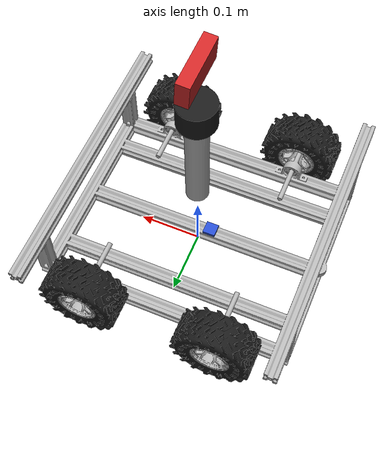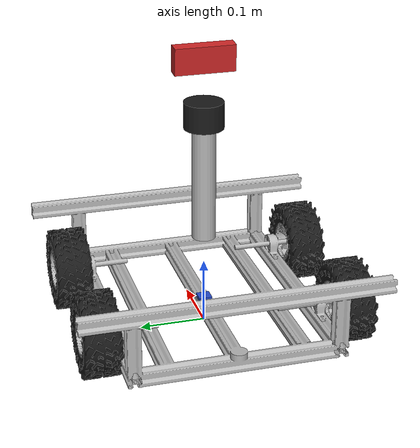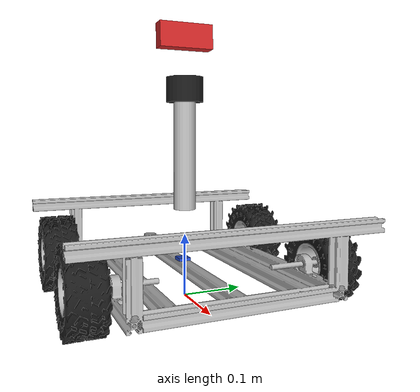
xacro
<?xml version="1.0" ?>
<robot name="perceptron_robot" xmlns:xacro="http://www.ros.org/wiki/xacro">

  <xacro:include filename="$(find perceptron_robot_description)/urdf/materials.xacro" />

  <xacro:arg name="is_sim" default="true"/>
  <xacro:arg name="gazebo_controllers" default="$(find perceptron_robot_control)/config/controllers.yaml"/>
  <!-- true swaps the ~340k-triangle meshes for primitives (much faster on WSL software GL) -->
  <xacro:arg name="simple_visuals" default="false"/>

  <xacro:arg name="wheel_collision" default="cylinder"/>
  <xacro:property name="wheel_collision" value="$(arg wheel_collision)"/>

  <xacro:arg name="camera_type" default="mono"/>
  <xacro:property name="camera_type" value="$(arg camera_type)"/>
  <xacro:property name="want_stereo" value="${camera_type == 'stereo'}"/>
  <xacro:property name="want_depth" value="${camera_type == 'depth'}"/>
  <!-- Stereo baseline in metres. Depth resolution scales with it; 0.12 m is
       typical for a small robot and resolves the 40-50 cm craters here. -->
  <xacro:arg name="stereo_baseline" default="0.12"/>
  <xacro:property name="stereo_baseline" value="$(arg stereo_baseline)"/>

  <xacro:arg name="lidar_type" default="2d"/>
  <!-- Downward tilt of the 3D scanner, radians. 0.26 rad is 15 degrees. Ignored
       in 2d mode, where tilting the plane would only shorten the useful range. -->
  <xacro:arg name="lidar_pitch" default="0.26"/>

  <xacro:property name="lidar_type" value="$(arg lidar_type)"/>
  <xacro:property name="lidar_pitch" value="$(arg lidar_pitch)"/>
  <xacro:property name="want_2d" value="${lidar_type == '2d' or lidar_type == 'both'}"/>
  <xacro:property name="want_3d" value="${lidar_type == '3d' or lidar_type == 'both'}"/>

  <xacro:property name="simple_visuals" value="$(arg simple_visuals)"/>

  <!-- ==================== MEASURED GEOMETRY ==================== -->
  <!-- tyre.stl is a 125 mm dia x 57.9 mm wide cylinder -->
  <xacro:property name="wheel_radius" value="0.0625"/>
  <xacro:property name="wheel_width"  value="0.0579"/>

  <!-- Half wheelbase / half track, from the original joint origins re-centred -->
  <xacro:property name="wheel_x" value="0.10774"/>
  <xacro:property name="wheel_y" value="0.18881"/>

  <!-- base_link.stl bbox: x[-0.10695,0.308] y[-0.06958,0.383] z[0,0.111] -->
  <!-- Offset moving the mesh frame onto base_link (wheel-rectangle centre, axle height) -->
  <xacro:property name="mx" value="-0.11186"/>
  <xacro:property name="my" value="-0.15119"/>
  <xacro:property name="mz" value="-0.03140"/>

  <!-- ==================== LIDAR MOUNT ==================== -->
  <xacro:property name="lidar_x" value="0.0"/>
  <xacro:property name="lidar_y" value="0.0"/>
  <xacro:property name="lidar_z" value="0.2775"/>
  <xacro:property name="lidar_body_r" value="0.0298"/>
  <xacro:property name="lidar_body_h" value="0.0400"/>
  <!-- scan plane sits this far above the underside of the sensor body -->
  <xacro:property name="lidar_plane_above_base" value="0.0245"/>
  <xacro:property name="chassis_top_z" value="0.0796"/>

  <!-- ==================== WHEEL MACRO ==================== -->
  <xacro:macro name="wheel" params="name x y">
    <link name="${name}_wheel">
      <inertial>
        <origin xyz="0 0 0" rpy="0 0 0"/>
        <mass value="0.71244"/>
        <!-- solid cylinder, spin axis = Y -->
        <inertia ixx="0.00089543" iyy="0.00139148" izz="0.00089543"
                 ixy="0.0" iyz="0.0" ixz="0.0"/>
      </inertial>

      <xacro:if value="${simple_visuals}">
        <visual name="${name}_wheel_visual">
          <origin xyz="0 0 0" rpy="1.57079632679 0 0"/>
          <geometry>
            <cylinder radius="${wheel_radius}" length="${wheel_width}"/>
          </geometry>
          <material name="black"/>
        </visual>
      </xacro:if>

      <xacro:unless value="${simple_visuals}">
        <!-- tyre.stl centre is at (0.700, -0.175, 0) in mesh coords; Rz(90) maps mesh +X onto link +Y -->
        <visual name="${name}_tyre_visual">
          <origin xyz="-0.175 -0.7 0" rpy="0 0 1.57079632679"/>
          <geometry>
            <mesh filename="package://perceptron_robot_description/meshes/tyre.stl" scale="0.001 0.001 0.001"/>
          </geometry>
          <material name="black"/>
        </visual>
        <!-- rim_1.stl centre is at (0.7007, -0.175, 0) -->
        <visual name="${name}_rim_visual">
          <origin xyz="-0.175 -0.7007 0" rpy="0 0 1.57079632679"/>
          <geometry>
            <mesh filename="package://perceptron_robot_description/meshes/rim_1.stl" scale="0.001 0.001 0.001"/>
          </geometry>
          <material name="silver"/>
        </visual>
      </xacro:unless>

      <collision name="${name}_wheel_collision">
        <origin xyz="0 0 0" rpy="1.57079632679 0 0"/>
        <geometry>
          <xacro:if value="${wheel_collision == 'sphere'}">
            <sphere radius="${wheel_radius}"/>
          </xacro:if>
          <xacro:unless value="${wheel_collision == 'sphere'}">
            <cylinder radius="${wheel_radius}" length="${wheel_width}"/>
          </xacro:unless>
        </geometry>
      </collision>
    </link>

    <joint name="${name}" type="continuous">
      <origin xyz="${x} ${y} 0" rpy="0 0 0"/>
      <parent link="base_link"/>
      <child link="${name}_wheel"/>
      <axis xyz="0 1 0"/>
      <limit effort="12.0" velocity="25.0"/>
      <dynamics damping="0.02" friction="0.01"/>
    </joint>
  </xacro:macro>

  <!-- ==================== BASE ==================== -->
  <link name="base_footprint"/>

  <joint name="base_footprint_joint" type="fixed">
    <parent link="base_footprint"/>
    <child link="base_link"/>
    <origin xyz="0 0 ${wheel_radius}" rpy="0 0 0"/>
  </joint>

  <link name="base_link">
    <inertial>
      <origin xyz="-0.009505 0.006496 0.003913" rpy="0 0 0"/>
      <mass value="5.2832"/>
      <inertia ixx="0.084731" iyy="0.132613" izz="0.201957"
               ixy="-0.000161" iyz="0.000101" ixz="-1.12e-07"/>
    </inertial>

    <xacro:if value="${simple_visuals}">
      <visual name="base_link_visual">
        <origin xyz="-0.01134 0.00552 0.0241" rpy="0 0 0"/>
        <geometry>
          <box size="0.4150 0.4526 0.1110"/>
        </geometry>
        <material name="silver"/>
      </visual>
    </xacro:if>

    <xacro:unless value="${simple_visuals}">
      <visual name="base_link_visual">
        <origin xyz="${mx} ${my} ${mz}" rpy="0 0 0"/>
        <geometry>
          <mesh filename="package://perceptron_robot_description/meshes/base_link.stl" scale="0.001 0.001 0.001"/>
        </geometry>
        <material name="silver"/>
      </visual>
    </xacro:unless>

    <!-- Box collision rather than the 24k-triangle mesh, because ODE is far
         happier with it and it is indistinguishable for a docking scenario. -->
    <collision name="base_link_collision">
      <origin xyz="-0.01134 0.00552 0.0241" rpy="0 0 0"/>
      <geometry>
        <box size="0.4150 0.4526 0.1110"/>
      </geometry>
    </collision>
  </link>

  <!-- ==================== WHEELS ==================== -->
  <xacro:wheel name="left_front"  x="${wheel_x}"  y="${wheel_y}"/>
  <xacro:wheel name="right_front" x="${wheel_x}"  y="${-wheel_y}"/>
  <xacro:wheel name="left_back"   x="${-wheel_x}" y="${wheel_y}"/>
  <xacro:wheel name="right_back"  x="${-wheel_x}" y="${-wheel_y}"/>

  <!-- ==================== IMU ==================== -->
  <link name="imu_link">
    <inertial>
      <origin xyz="0 0 0" rpy="0 0 0"/>
      <mass value="0.0157"/>
      <inertia ixx="5.56e-07" iyy="5.56e-07" izz="1.05e-06" ixy="0" iyz="0" ixz="0"/>
    </inertial>
    <xacro:unless value="${simple_visuals}">
      <visual name="imu_visual">
        <origin xyz="-0.0866207 -0.1577983 -0.0225" rpy="0 0 0"/>
        <geometry>
          <mesh filename="package://perceptron_robot_description/meshes/IMU.stl" scale="0.001 0.001 0.001"/>
        </geometry>
        <material name="blue"/>
      </visual>
    </xacro:unless>
  </link>

  <joint name="imu_joint" type="fixed">
    <origin xyz="-0.0252393 0.0066083 -0.0089" rpy="0 0 0"/>
    <parent link="base_link"/>
    <child link="imu_link"/>
  </joint>

  <!-- ==================== CAMERA ==================== -->
  <link name="camera_link">
    <inertial>
      <origin xyz="0 0 0" rpy="0 0 0"/>
      <mass value="0.0652"/>
      <inertia ixx="5.0e-05" iyy="1.2e-05" izz="5.0e-05" ixy="0" iyz="0" ixz="0"/>
    </inertial>
    <xacro:unless value="${simple_visuals}">
      <visual name="camera_visual">
        <origin xyz="-0.295 -0.165 -0.131" rpy="0 0 0"/>
        <geometry>
          <mesh filename="package://perceptron_robot_description/meshes/camera.stl" scale="0.001 0.001 0.001"/>
        </geometry>
        <material name="red"/>
      </visual>
    </xacro:unless>
    <xacro:if value="${simple_visuals}">
      <visual name="camera_visual">
        <origin xyz="0 0 0" rpy="0 0 0"/>
        <geometry>
          <box size="0.020 0.090 0.040"/>
        </geometry>
        <material name="red"/>
      </visual>
    </xacro:if>
  </link>

  <joint name="camera_joint" type="fixed">
    <!-- z is the measured 0.42 m lens height minus wheel_radius, because this
         origin is in base_link and base_link sits on the axles. -->
    <origin xyz="0 0 ${0.42 - wheel_radius}" rpy="0 -0.07027 0"/>
    <parent link="base_link"/>
    <child link="camera_link"/>
  </joint>

  <!-- Stereo pair. Mounted either side of the mono camera, looking the same way. -->
  <xacro:if value="${want_stereo}">
    <link name="stereo_left_link"/>
    <joint name="stereo_left_joint" type="fixed">
      <origin xyz="0 ${stereo_baseline/2} 0" rpy="0 0 0"/>
      <parent link="camera_link"/>
      <child link="stereo_left_link"/>
    </joint>
    <link name="stereo_left_optical_link"/>
    <joint name="stereo_left_optical_joint" type="fixed">
      <origin xyz="0 0 0" rpy="-1.57079632679 0 -1.57079632679"/>
      <parent link="stereo_left_link"/>
      <child link="stereo_left_optical_link"/>
    </joint>

    <link name="stereo_right_link"/>
    <joint name="stereo_right_joint" type="fixed">
      <origin xyz="0 ${-stereo_baseline/2} 0" rpy="0 0 0"/>
      <parent link="camera_link"/>
      <child link="stereo_right_link"/>
    </joint>
    <link name="stereo_right_optical_link"/>
    <joint name="stereo_right_optical_joint" type="fixed">
      <origin xyz="0 0 0" rpy="-1.57079632679 0 -1.57079632679"/>
      <parent link="stereo_right_link"/>
      <child link="stereo_right_optical_link"/>
    </joint>
  </xacro:if>

  <!-- RGBD unit. Shares camera_link, its own optical frame for the cloud. -->
  <xacro:if value="${want_depth}">
    <link name="depth_camera_optical_link"/>
    <joint name="depth_camera_optical_joint" type="fixed">
      <origin xyz="0 0 0" rpy="-1.57079632679 0 -1.57079632679"/>
      <parent link="camera_link"/>
      <child link="depth_camera_optical_link"/>
    </joint>
  </xacro:if>

  <!-- REP-103 optical frame, +Z out of the lens, +X right, +Y down -->
  <link name="camera_optical_link"/>

  <joint name="camera_optical_joint" type="fixed">
    <origin xyz="0 0 0" rpy="-1.57079632679 0 -1.57079632679"/>
    <parent link="camera_link"/>
    <child link="camera_optical_link"/>
  </joint>

  <!-- ==================== LIDAR ==================== -->
  <link name="laser_link">
    <inertial>
      <origin xyz="0 0 ${-lidar_plane_above_base + lidar_body_h/2}" rpy="0 0 0"/>
      <mass value="0.19"/>
      <inertia ixx="6.0e-05" iyy="6.0e-05" izz="8.4e-05" ixy="0" iyz="0" ixz="0"/>
    </inertial>
    <visual name="laser_body_visual">
      <origin xyz="0 0 ${-lidar_plane_above_base + lidar_body_h/2}" rpy="0 0 0"/>
      <geometry>
        <cylinder radius="${lidar_body_r}" length="${lidar_body_h}"/>
      </geometry>
      <material name="black"/>
    </visual>
    <collision name="laser_body_collision">
      <origin xyz="0 0 ${-lidar_plane_above_base + lidar_body_h/2}" rpy="0 0 0"/>
      <geometry>
        <cylinder radius="${lidar_body_r}" length="${lidar_body_h}"/>
      </geometry>
    </collision>
  </link>

  <joint name="laser_joint" type="fixed">
    <origin xyz="${lidar_x} ${lidar_y} ${lidar_z}" rpy="0 0 0"/>
    <parent link="base_link"/>
    <child link="laser_link"/>
  </joint>

  <xacro:if value="${want_3d}">
    <link name="lidar3d_link">
      <inertial>
        <origin xyz="0 0 0" rpy="0 0 0"/>
        <mass value="0.27"/>
        <inertia ixx="1.4e-04" iyy="1.4e-04" izz="1.6e-04" ixy="0" iyz="0" ixz="0"/>
      </inertial>
      <visual name="lidar3d_visual">
        <origin xyz="0 0 0" rpy="0 0 0"/>
        <geometry>
          <cylinder radius="0.0380" length="0.0720"/>
        </geometry>
        <material name="blue"/>
      </visual>
      <collision name="lidar3d_collision">
        <origin xyz="0 0 0" rpy="0 0 0"/>
        <geometry>
          <cylinder radius="0.0380" length="0.0720"/>
        </geometry>
      </collision>
    </link>

    <joint name="lidar3d_joint" type="fixed">
      <origin xyz="${lidar_x} ${lidar_y} ${lidar_z + 0.075}" rpy="0 ${lidar_pitch} 0"/>
      <parent link="base_link"/>
      <child link="lidar3d_link"/>
    </joint>
  </xacro:if>

  <!-- Post carrying the lidar up clear of the camera -->
  <link name="lidar_post_link">
    <inertial>
      <origin xyz="0 0 0" rpy="0 0 0"/>
      <mass value="0.05"/>
      <inertia ixx="1.0e-05" iyy="1.0e-05" izz="1.0e-05" ixy="0" iyz="0" ixz="0"/>
    </inertial>
    <visual name="lidar_post_visual">
      <origin xyz="0 0 0" rpy="0 0 0"/>
      <geometry>
        <cylinder radius="0.018"
                  length="${lidar_z - lidar_plane_above_base - chassis_top_z}"/>
      </geometry>
      <material name="silver"/>
    </visual>
  </link>

  <joint name="lidar_post_joint" type="fixed">
    <origin xyz="${lidar_x} ${lidar_y}
                 ${(chassis_top_z + lidar_z - lidar_plane_above_base) / 2}" rpy="0 0 0"/>
    <parent link="base_link"/>
    <child link="lidar_post_link"/>
  </joint>

  <!-- ==================== ROS 2 CONTROL ==================== -->
  <xacro:macro name="drive_joints">
    <joint name="left_front">
      <command_interface name="velocity"/>
      <state_interface name="position"/>
      <state_interface name="velocity"/>
    </joint>
    <joint name="left_back">
      <command_interface name="velocity"/>
      <state_interface name="position"/>
      <state_interface name="velocity"/>
    </joint>
    <joint name="right_front">
      <command_interface name="velocity"/>
      <state_interface name="position"/>
      <state_interface name="velocity"/>
    </joint>
    <joint name="right_back">
      <command_interface name="velocity"/>
      <state_interface name="position"/>
      <state_interface name="velocity"/>
    </joint>
  </xacro:macro>

  <xacro:if value="$(arg is_sim)">
    <xacro:include filename="$(find perceptron_robot_description)/urdf/perceptron_robot.gazebo" />

    <ros2_control name="gazebo_ros2_control" type="system">
      <hardware>
        <plugin>gazebo_ros2_control/GazeboSystem</plugin>
      </hardware>
      <xacro:drive_joints/>
    </ros2_control>

    <gazebo>
      <plugin filename="libgazebo_ros2_control.so" name="gazebo_ros2_control">
        <parameters>$(arg gazebo_controllers)</parameters>
      </plugin>
    </gazebo>
  </xacro:if>

  <xacro:unless value="$(arg is_sim)">
    <ros2_control name="mock_robot" type="system">
      <hardware>
        <plugin>mock_components/GenericSystem</plugin>
        <param name="calculate_dynamics">true</param>
      </hardware>
      <xacro:drive_joints/>
    </ros2_control>
  </xacro:unless>

</robot>

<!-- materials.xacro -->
<robot name="perceptron_robot" xmlns:xacro="http://www.ros.org/wiki/xacro" >

  <material name="silver"><color rgba="0.700 0.700 0.700 1.000"/></material>
  <material name="black"><color rgba="0.100 0.100 0.100 1.000"/></material>
  <material name="red"><color rgba="0.800 0.150 0.150 1.000"/></material>
  <material name="blue"><color rgba="0.150 0.300 0.800 1.000"/></material>
  <material name="white"><color rgba="1.000 1.000 1.000 1.000"/></material>

</robot>
